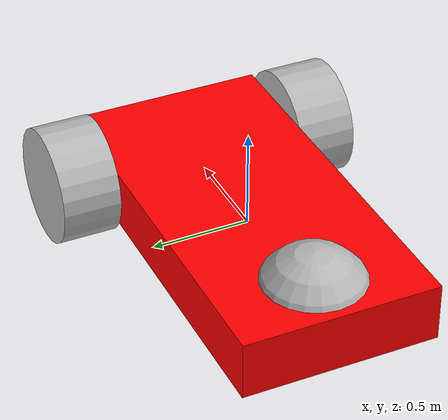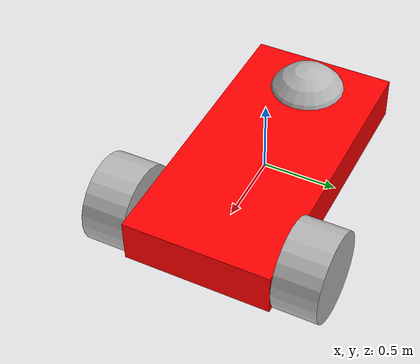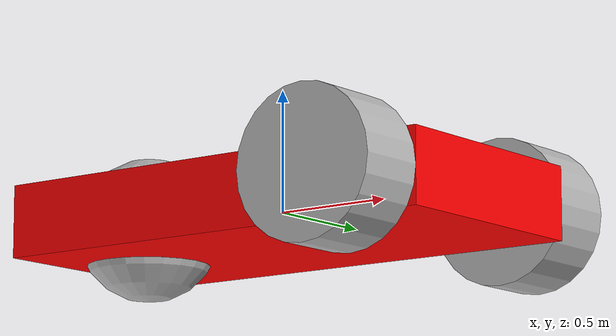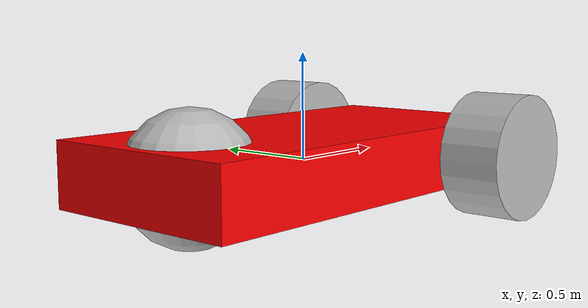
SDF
<sdf version='1.9'>
  <model name='rover'>
    <link name='base_footprint'>
      <inertial>
        <pose>-0.2625 0 0 0 0 0</pose>
        <mass>3.2000000000000002</mass>
        <inertia>
          <ixx>0.22486666666666669</ixx>
          <ixy>0</ixy>
          <ixz>0</ixz>
          <iyy>1.092366666666666</iyy>
          <iyz>0</iyz>
          <izz>1.2440333333333331</izz>
        </inertia>
      </inertial>
      <collision name='base_footprint_fixed_joint_lump__base_link_collision'>
        <pose>0 0 0 0 0 0</pose>
        <geometry>
          <box>
            <size>2 1 0.3</size>
          </box>
        </geometry>
        <surface>
          <contact>
            <ode/>
          </contact>
          <friction>
            <ode/>
          </friction>
        </surface>
      </collision>
      <collision name='base_footprint_fixed_joint_lump__caster_link_collision_1'>
        <pose>-0.7 0 0 0 0 0</pose>
        <geometry>
          <sphere>
            <radius>0.29999999999999999</radius>
          </sphere>
        </geometry>
        <surface>
          <contact>
            <ode/>
          </contact>
          <friction>
            <ode>
              <mu>0</mu>
              <mu2>0</mu2>
            </ode>
          </friction>
        </surface>
      </collision>
      <visual name='base_footprint_fixed_joint_lump__base_link_visual'>
        <pose>0 0 0 0 0 0</pose>
        <geometry>
          <box>
            <size>2 1 0.3</size>
          </box>
        </geometry>
        <material>
          <ambient>1 0 0 1</ambient>
          <diffuse>1 0 0 1</diffuse>
          <specular>1 0 0 1</specular>
        </material>
      </visual>
      <visual name='base_footprint_fixed_joint_lump__caster_link_visual_1'>
        <pose>-0.7 0 0 0 0 0</pose>
        <geometry>
          <sphere>
            <radius>0.29999999999999999</radius>
          </sphere>
        </geometry>
      </visual>
      <sensor name='imu_sensor' type='imu'>
        <always_on>true</always_on>
        <update_rate>100</update_rate>
        <visualize>true</visualize>
        <topic>/model/rover/imu</topic>
        <pose>0 0 0 0 -0 0</pose>
        <angular_velocity>
          <x>
            <noise type='none'/>
          </x>
          <y>
            <noise type='none'/>
          </y>
          <z>
            <noise type='none'/>
          </z>
        </angular_velocity>
        <linear_acceleration>
          <x>
            <noise type='none'/>
          </x>
          <y>
            <noise type='none'/>
          </y>
          <z>
            <noise type='none'/>
          </z>
        </linear_acceleration>
      </sensor>
      <sensor name='LUCAS_ODOMETER' type='custom' ignition:type='odometer'>
        <always_on>true</always_on>
        <update_rate>30</update_rate>
        <visualize>true</visualize>
        <pose>0 0 0 0 -0 0</pose>
        <ignition:odometer>
          <noise type='gaussian'>
            <mean>0.00001</mean>
            <stddev>0.00001</stddev>
          </noise>
        </ignition:odometer>
      </sensor>
    </link>
    <joint name='fl_joint' type='revolute'>
      <pose relative_to='base_footprint'>0.7 0.65 0 -1.570796326794897 1.224646799147353e-16 -1.224646799147353e-16</pose>
      <parent>base_footprint</parent>
      <child>fl_link</child>
      <axis>
        <xyz>0 0 1</xyz>
        <limit>
          <lower>-10000000000000000</lower>
          <upper>10000000000000000</upper>
        </limit>
        <dynamics>
          <spring_reference>0</spring_reference>
          <spring_stiffness>0</spring_stiffness>
        </dynamics>
      </axis>
    </joint>
    <link name='fl_link'>
      <pose relative_to='fl_joint'>0 0 0 0 0 0</pose>
      <inertial>
        <pose>0 0 0 0 0 0</pose>
        <mass>1.2</mass>
        <inertia>
          <ixx>0.035999999999999997</ixx>
          <ixy>0</ixy>
          <ixz>0</ixz>
          <iyy>0.035999999999999997</iyy>
          <iyz>0</iyz>
          <izz>0.053999999999999999</izz>
        </inertia>
      </inertial>
      <collision name='fl_link_collision'>
        <pose>0 0 0 0 0 0</pose>
        <geometry>
          <cylinder>
            <length>0.29999999999999999</length>
            <radius>0.29999999999999999</radius>
          </cylinder>
        </geometry>
      </collision>
      <visual name='fl_link_visual'>
        <pose>0 0 0 0 0 0</pose>
        <geometry>
          <cylinder>
            <length>0.29999999999999999</length>
            <radius>0.29999999999999999</radius>
          </cylinder>
        </geometry>
      </visual>
    </link>
    <joint name='fr_joint' type='revolute'>
      <pose relative_to='base_footprint'>0.7 -0.65 0 -1.570796326794897 1.224646799147353e-16 -1.224646799147353e-16</pose>
      <parent>base_footprint</parent>
      <child>fr_link</child>
      <axis>
        <xyz>0 0 1</xyz>
        <limit>
          <lower>-10000000000000000</lower>
          <upper>10000000000000000</upper>
        </limit>
        <dynamics>
          <spring_reference>0</spring_reference>
          <spring_stiffness>0</spring_stiffness>
        </dynamics>
      </axis>
    </joint>
    <link name='fr_link'>
      <pose relative_to='fr_joint'>0 0 0 0 0 0</pose>
      <inertial>
        <pose>0 0 0 0 0 0</pose>
        <mass>1.2</mass>
        <inertia>
          <ixx>0.035999999999999997</ixx>
          <ixy>0</ixy>
          <ixz>0</ixz>
          <iyy>0.035999999999999997</iyy>
          <iyz>0</iyz>
          <izz>0.053999999999999999</izz>
        </inertia>
      </inertial>
      <collision name='fr_link_collision'>
        <pose>0 0 0 0 0 0</pose>
        <geometry>
          <cylinder>
            <length>0.29999999999999999</length>
            <radius>0.29999999999999999</radius>
          </cylinder>
        </geometry>
      </collision>
      <visual name='fr_link_visual'>
        <pose>0 0 0 0 0 0</pose>
        <geometry>
          <cylinder>
            <length>0.29999999999999999</length>
            <radius>0.29999999999999999</radius>
          </cylinder>
        </geometry>
      </visual>
    </link>
    <static>false</static>
    <plugin name='ignition::gazebo::systems::DiffDrive' filename='ignition-gazebo-diff-drive-system'>
      <left_joint>fl_joint</left_joint>
      <right_joint>fr_joint</right_joint>
      <wheel_separation>1.0</wheel_separation>
      <wheel_radius>0.3</wheel_radius>
      <odom_publish_frequency>100.0</odom_publish_frequency>
      <topic>cmd_vel</topic>
    </plugin>
    <plugin name='ignition::gazebo::systems::PosePublisher' filename='ignition-gazebo-pose-publisher-system'>
      <publish_link_pose>false</publish_link_pose>
      <publish_collision_pose>false</publish_collision_pose>
      <publish_visual_pose>false</publish_visual_pose>
      <publish_sensor_pose>false</publish_sensor_pose>
      <publish_nested_model_pose>true</publish_nested_model_pose>
      <update_frequency>100.0</update_frequency>
      <use_pose_vector_msg>false</use_pose_vector_msg>
    </plugin>
  </model>
</sdf>
